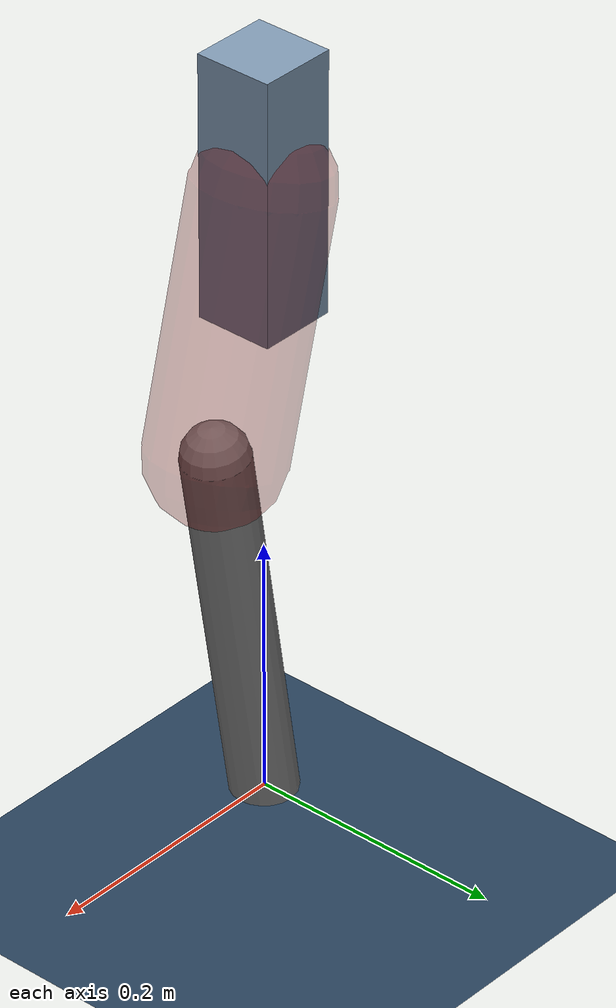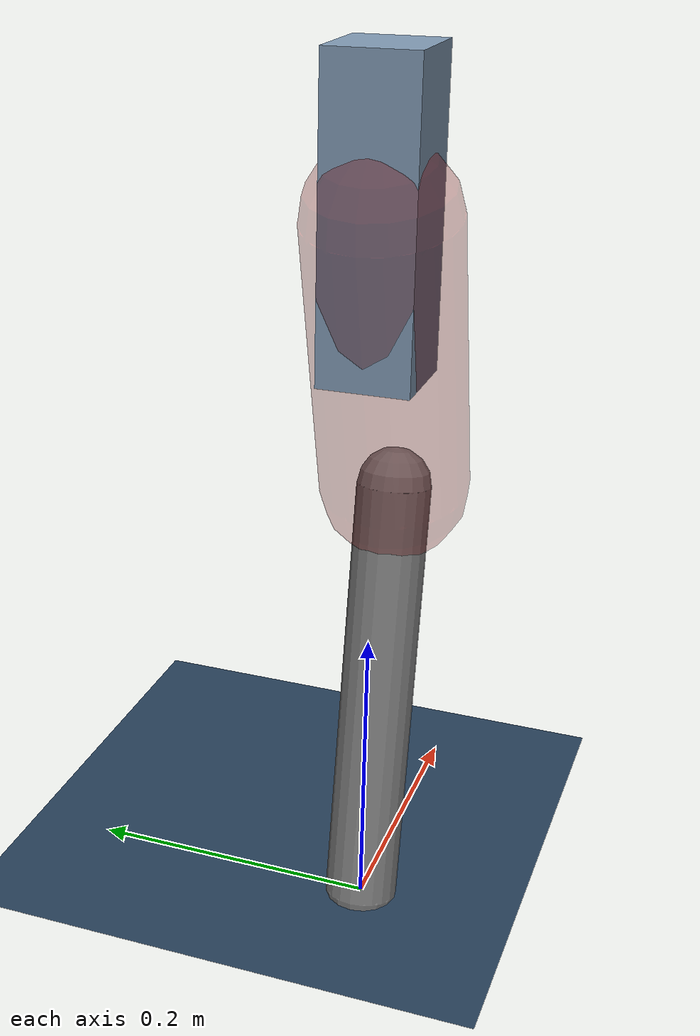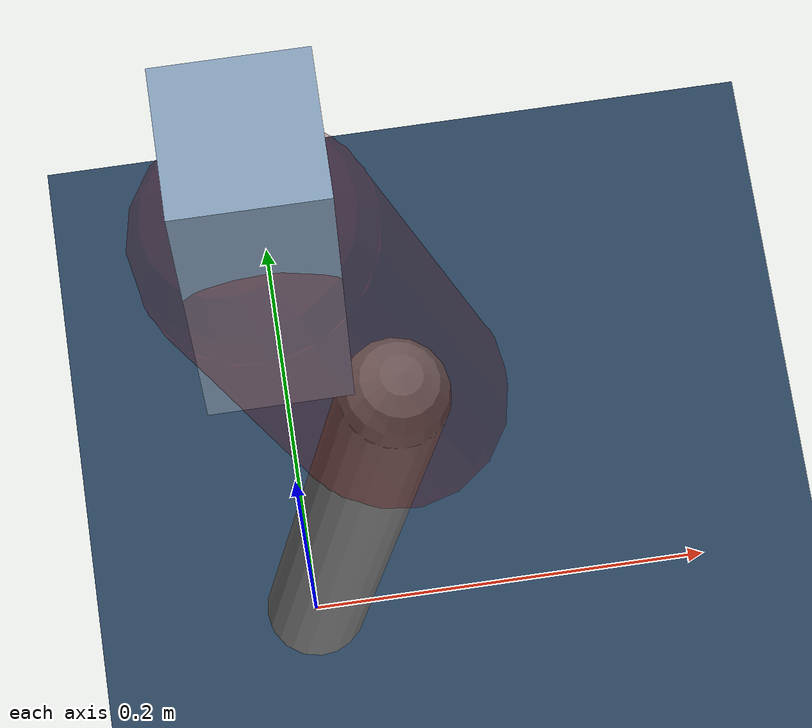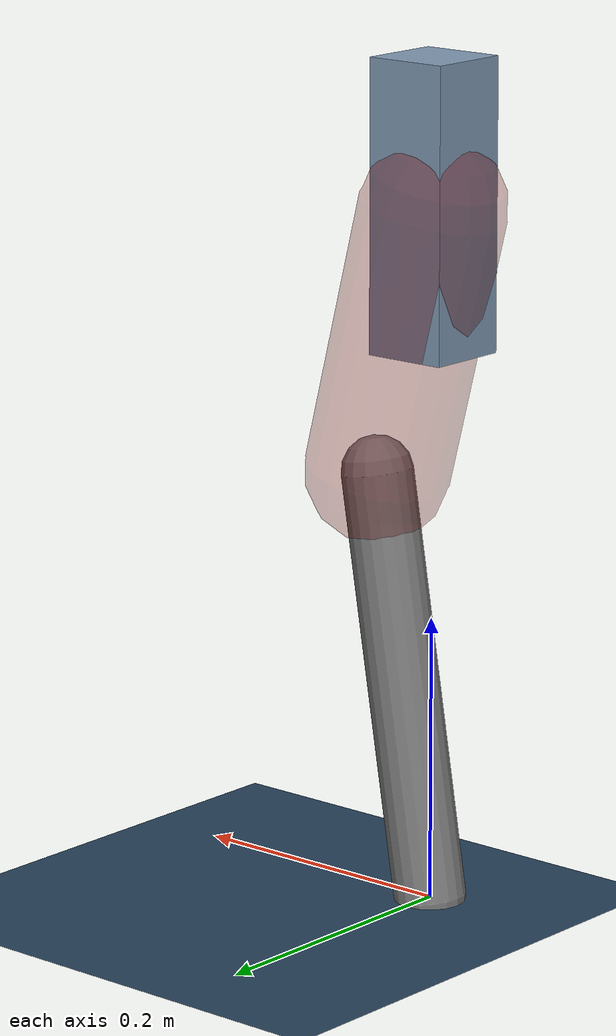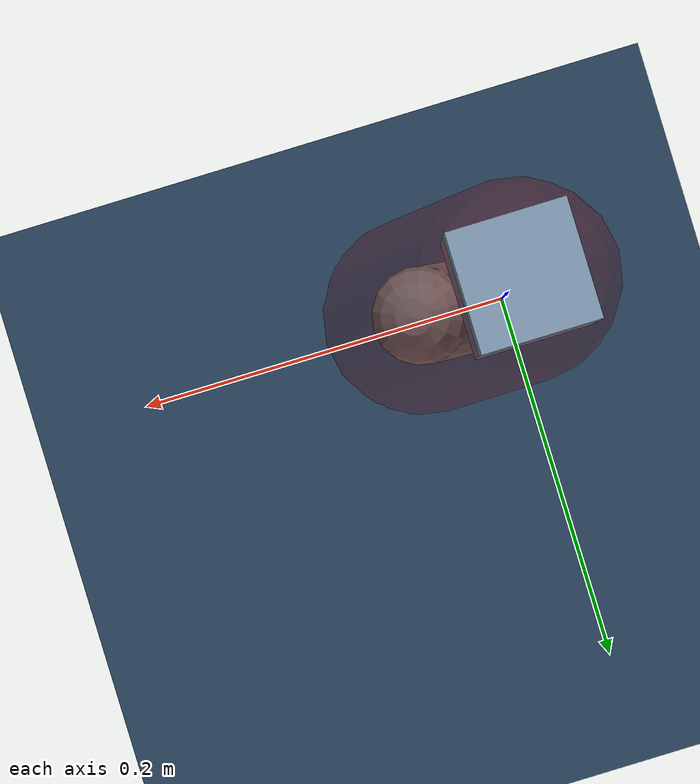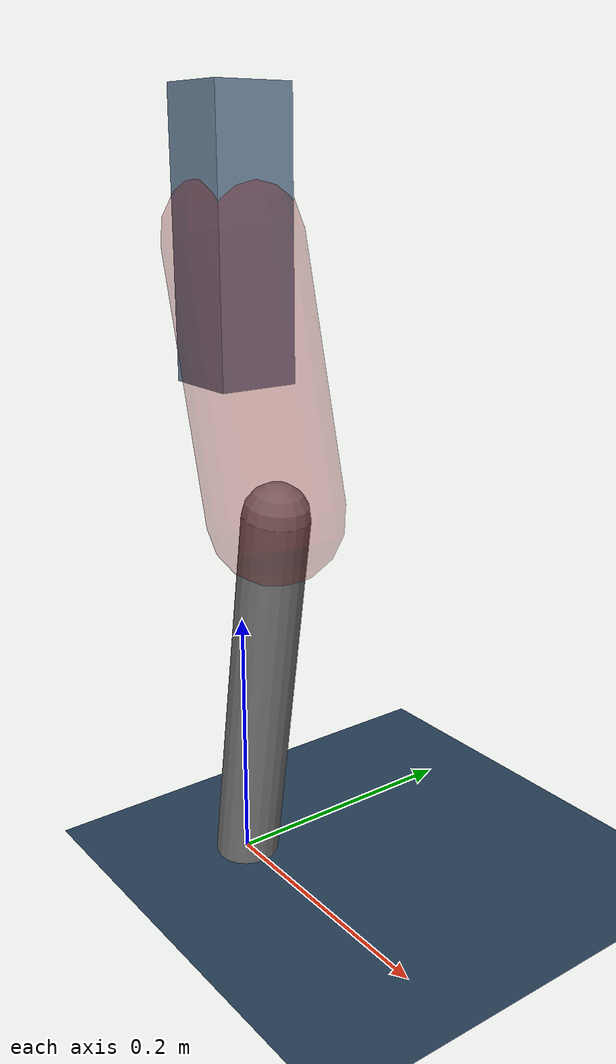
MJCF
<mujoco model="Hopper2D">
	<compiler inertiafromgeom="true" angle="radian" />
	<option timestep="0.001" integrator="implicit" cone="elliptic" solver="Newton" tolerance="1e-10" />

	<default>
		<geom contype="1" conaffinity="1" condim="3" friction="2 0.005 0.0001" solref="0.005 1" />
		<joint limited="true" damping="0.1" />
	</default>

	<asset>
		<texture name="skybox" type="skybox" builtin="gradient" rgb1=".4 .6 .8" rgb2="0 0 0" width="800" height="800" />
		<texture name="grid" type="2d" builtin="checker" rgb1=".1 .2 .3" rgb2=".2 .3 .4" width="300" height="300" mark="edge" markrgb=".2 .3 .4" />
		<material name="ground" texture="grid" texrepeat="1 1" texuniform="true" reflectance="0.1" />
		<material name="leg" rgba="0.5 0.6 0.7 1" />
	</asset>

	<worldbody>

		<geom name="floor" type="plane" size="5 5 0.25" material="ground" />

		<light directional="false" diffuse="0.8 0.8 0.8" specular="0.3 0.3 0.3" pos="0 0 2" dir="0 0 -1" />
		<light mode="targetbodycom" target="base" directional="false" diffuse="0.8 0.8 0.8" specular="0.3 0.3 0.3" pos="0 0 2" dir="0 0 -1" />

		<camera name="fixed" pos="0 -2 1" xyaxes="1 0 0 0 0 1" />
		<camera name="tracking" mode="trackcom" pos="0 -3 1" />

		<body name="root" pos="0 0 0.4835149780645308">
			<joint name="slide_x" type="slide" axis="1 0 0" range="-100 100" />
			<joint name="slide_z" type="slide" axis="0 0 1" range="0 10" />

			<body name="base" pos="0 0 0">
				<geom name="torso" type="box" size="0.03 0.03 0.1" mass="1.599" material="leg" />

				<body name="link1" pos="0 0 0" euler="0 1.320039859607629 0">
					<joint type="hinge" axis="0 -1 0" pos="0 0 0" name="hinge1" limited="true" range="-3.14 3.14" stiffness="0" damping="0.1" />
					<geom name="thigh" type="capsule" fromto="0 0 0 0.19445754371560647 0 0" size="0.05" rgba="0.5 0 0 0.3" mass="0.7159438592890162" />

					<body name="link2" pos="0.19445754371560647 0 0" euler="0 0.4128120557765479 0">
						<joint type="hinge" axis="0 -1 0" pos="0 0 0" name="hinge2" limited="true" range="-3.14 3.14" stiffness="0" damping="0.1" />
						<geom name="shank" type="capsule" fromto="0 0 0 0.29905743434892434 0 0" size="0.025" mass="0.48264594747913947" />

					</body>
				</body>
			</body>
		</body>
	</worldbody>

	<actuator>
		<motor name="torque1" joint="hinge1" ctrlrange="-40.797296848038975 40.797296848038975" ctrllimited="true" gear="1" />
		<motor name="torque2" joint="hinge2" ctrlrange="-32.44952618960386 32.44952618960386" ctrllimited="true" gear="1" />
	</actuator>
</mujoco>
